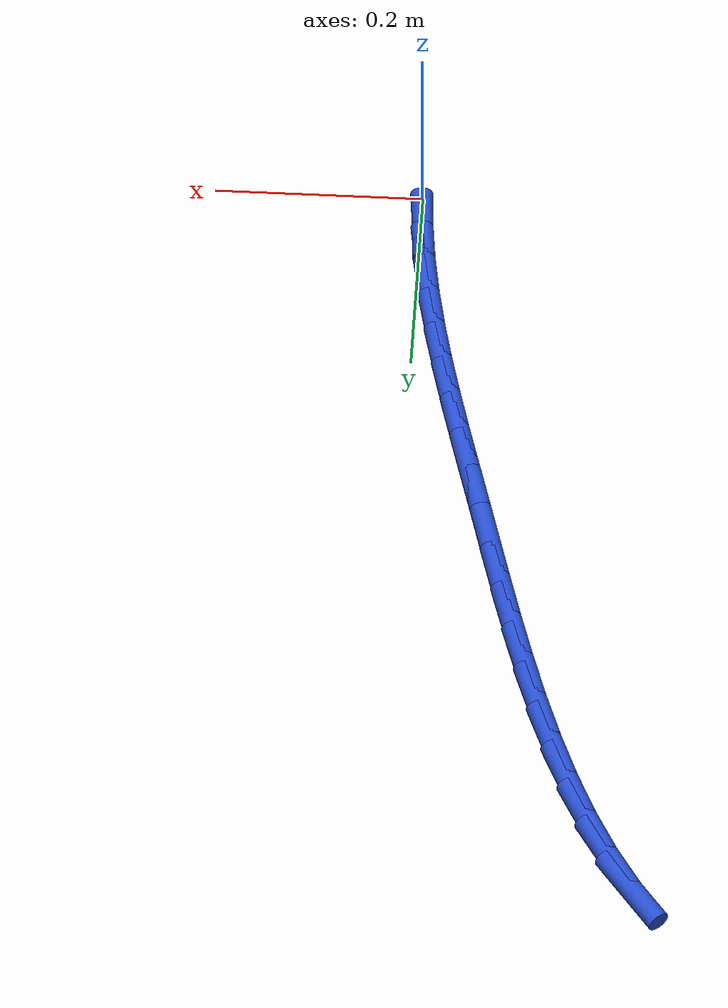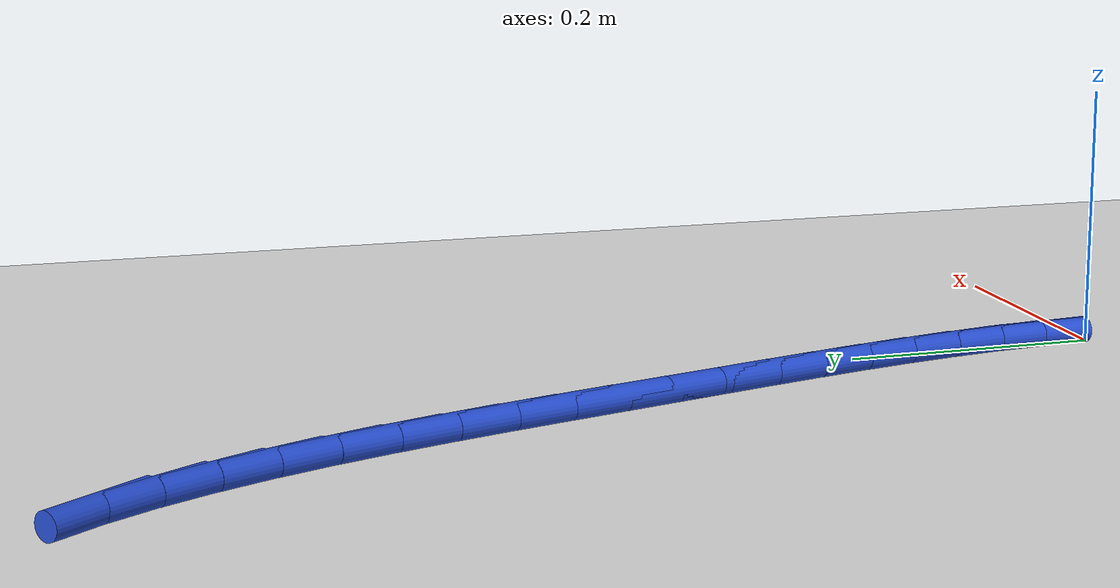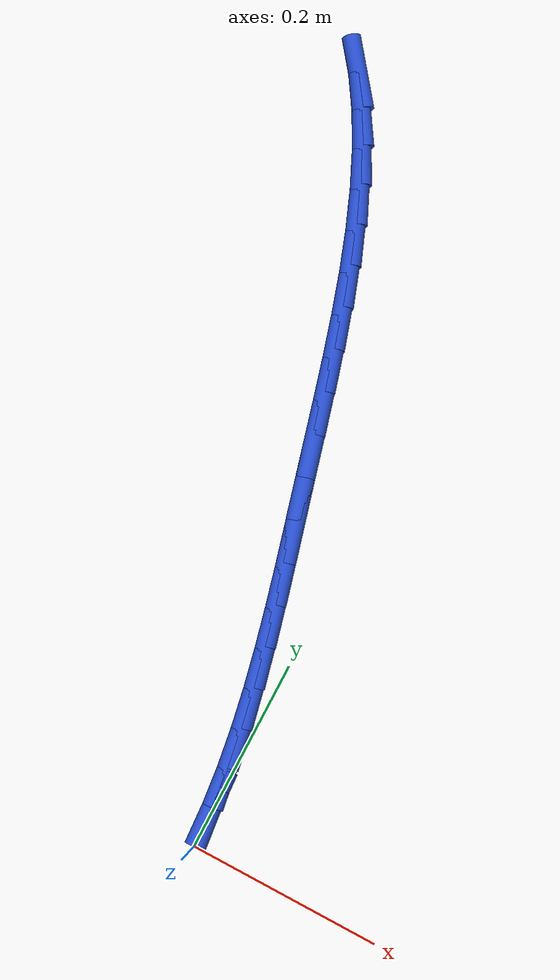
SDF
<sdf version="1.6">
 <world name="default">
  <model name="ground_plane">
   <static>1</static>
   <link name="link">
    <collision name="collision">
     <geometry><plane><normal>0 0 1</normal><size>100 100</size></plane></geometry>
     <surface><friction><ode><mu>100</mu><mu2>50</mu2></ode></friction></surface>
    </collision>
    <visual name="visual">
     <cast_shadows>0</cast_shadows>
     <geometry><plane><normal>0 0 1</normal><size>100 100</size></plane></geometry>
     <material>
      <script><uri>file://media/materials/scripts/gazebo.material</uri><name>Gazebo/WhiteGlow</name></script>
     </material>
    </visual>
   </link>
  </model>
  <model name="line">
   <link name="link_1">
    <pose>-0.0023930297820890945 0.04099016066702728 0.01 0 1.57 -1.4640141417196577</pose>
    <collision name="collision">
     <geometry><cylinder><radius>0.01</radius><length>0.08</length></cylinder></geometry>
    </collision>
    <visual name="visual">
     <material>
      <script><name>Gazebo/Blue</name><uri>file://media/materials/scripts/gazebo.material</uri></script>
     </material>
     <geometry><cylinder><radius>0.01</radius><length>0.08</length></cylinder></geometry>
    </visual>
   </link>
   <link name="link_2">
    <pose>-0.0067553265607276205 0.0816870605255259 0.01 0 1.57 -1.4215754872500803</pose>
    <collision name="collision">
     <geometry><cylinder><radius>0.01</radius><length>0.08</length></cylinder></geometry>
    </collision>
    <visual name="visual">
     <material>
      <script><name>Gazebo/Blue</name><uri>file://media/materials/scripts/gazebo.material</uri></script>
     </material>
     <geometry><cylinder><radius>0.01</radius><length>0.08</length></cylinder></geometry>
    </visual>
   </link>
   <link name="link_3">
    <pose>-0.012848597226478048 0.12221744090637951 0.01 0 1.57 -1.3855924008493954</pose>
    <collision name="collision">
     <geometry><cylinder><radius>0.01</radius><length>0.08</length></cylinder></geometry>
    </collision>
    <visual name="visual">
     <material>
      <script><name>Gazebo/Blue</name><uri>file://media/materials/scripts/gazebo.material</uri></script>
     </material>
     <geometry><cylinder><radius>0.01</radius><length>0.08</length></cylinder></geometry>
    </visual>
   </link>
   <link name="link_4">
    <pose>-0.02043454866990284 0.16270804314047127 0.01 0 1.57 -1.356285536956008</pose>
    <collision name="collision">
     <geometry><cylinder><radius>0.01</radius><length>0.08</length></cylinder></geometry>
    </collision>
    <visual name="visual">
     <material>
      <script><name>Gazebo/Blue</name><uri>file://media/materials/scripts/gazebo.material</uri></script>
     </material>
     <geometry><cylinder><radius>0.01</radius><length>0.08</length></cylinder></geometry>
    </visual>
   </link>
   <link name="link_5">
    <pose>-0.029274887781564455 0.20328560855868466 0.01 0 1.57 -1.3337097857130946</pose>
    <collision name="collision">
     <geometry><cylinder><radius>0.01</radius><length>0.08</length></cylinder></geometry>
    </collision>
    <visual name="visual">
     <material>
      <script><name>Gazebo/Blue</name><uri>file://media/materials/scripts/gazebo.material</uri></script>
     </material>
     <geometry><cylinder><radius>0.01</radius><length>0.08</length></cylinder></geometry>
    </visual>
   </link>
   <link name="link_6">
    <pose>-0.0391313214520254 0.24407687849190307 0.01 0 1.57 -1.3177953655166155</pose>
    <collision name="collision">
     <geometry><cylinder><radius>0.01</radius><length>0.08</length></cylinder></geometry>
    </collision>
    <visual name="visual">
     <material>
      <script><name>Gazebo/Blue</name><uri>file://media/materials/scripts/gazebo.material</uri></script>
     </material>
     <geometry><cylinder><radius>0.01</radius><length>0.08</length></cylinder></geometry>
    </visual>
   </link>
   <link name="link_7">
    <pose>-0.04976555657184812 0.28520859427100975 0.01 0 1.57 -1.3083835901399055</pose>
    <collision name="collision">
     <geometry><cylinder><radius>0.01</radius><length>0.08</length></cylinder></geometry>
    </collision>
    <visual name="visual">
     <material>
      <script><name>Gazebo/Blue</name><uri>file://media/materials/scripts/gazebo.material</uri></script>
     </material>
     <geometry><cylinder><radius>0.01</radius><length>0.08</length></cylinder></geometry>
    </visual>
   </link>
   <link name="link_8">
    <pose>-0.06093930003159509 0.32680749722688807 0.01 0 1.57 -1.305254239659153</pose>
    <collision name="collision">
     <geometry><cylinder><radius>0.01</radius><length>0.08</length></cylinder></geometry>
    </collision>
    <visual name="visual">
     <material>
      <script><name>Gazebo/Blue</name><uri>file://media/materials/scripts/gazebo.material</uri></script>
     </material>
     <geometry><cylinder><radius>0.01</radius><length>0.08</length></cylinder></geometry>
    </visual>
   </link>
   <link name="link_9">
    <pose>-0.0724142587218288 0.36900032869042143 0.01 0 1.57 -1.3074455239687846</pose>
    <collision name="collision">
     <geometry><cylinder><radius>0.01</radius><length>0.08</length></cylinder></geometry>
    </collision>
    <visual name="visual">
     <material>
      <script><name>Gazebo/Blue</name><uri>file://media/materials/scripts/gazebo.material</uri></script>
     </material>
     <geometry><cylinder><radius>0.01</radius><length>0.08</length></cylinder></geometry>
    </visual>
   </link>
   <link name="link_10">
    <pose>-0.08397723339862287 0.41188768243456314 0.01 0 1.57 -1.3070664677826795</pose>
    <collision name="collision">
     <geometry><cylinder><radius>0.01</radius><length>0.08</length></cylinder></geometry>
    </collision>
    <visual name="visual">
     <material>
      <script><name>Gazebo/Blue</name><uri>file://media/materials/scripts/gazebo.material</uri></script>
     </material>
     <geometry><cylinder><radius>0.01</radius><length>0.08</length></cylinder></geometry>
    </visual>
   </link>
   <link name="link_11">
    <pose>-0.09569388547635828 0.45527958220373976 0.01 0 1.57 -1.299430349507339</pose>
    <collision name="collision">
     <geometry><cylinder><radius>0.01</radius><length>0.08</length></cylinder></geometry>
    </collision>
    <visual name="visual">
     <material>
      <script><name>Gazebo/Blue</name><uri>file://media/materials/scripts/gazebo.material</uri></script>
     </material>
     <geometry><cylinder><radius>0.01</radius><length>0.08</length></cylinder></geometry>
    </visual>
   </link>
   <link name="link_12">
    <pose>-0.10780386450942175 0.49880475783339895 0.01 0 1.57 -1.2844283589881462</pose>
    <collision name="collision">
     <geometry><cylinder><radius>0.01</radius><length>0.08</length></cylinder></geometry>
    </collision>
    <visual name="visual">
     <material>
      <script><name>Gazebo/Blue</name><uri>file://media/materials/scripts/gazebo.material</uri></script>
     </material>
     <geometry><cylinder><radius>0.01</radius><length>0.08</length></cylinder></geometry>
    </visual>
   </link>
   <link name="link_13">
    <pose>-0.12054946503932609 0.5420891831087467 0.01 0 1.57 -1.2617476785269812</pose>
    <collision name="collision">
     <geometry><cylinder><radius>0.01</radius><length>0.08</length></cylinder></geometry>
    </collision>
    <visual name="visual">
     <material>
      <script><name>Gazebo/Blue</name><uri>file://media/materials/scripts/gazebo.material</uri></script>
     </material>
     <geometry><cylinder><radius>0.01</radius><length>0.08</length></cylinder></geometry>
    </visual>
   </link>
   <link name="link_14">
    <pose>-0.13417298160758426 0.5847588318149887 0.01 0 1.57 -1.2308032604516916</pose>
    <collision name="collision">
     <geometry><cylinder><radius>0.01</radius><length>0.08</length></cylinder></geometry>
    </collision>
    <visual name="visual">
     <material>
      <script><name>Gazebo/Blue</name><uri>file://media/materials/scripts/gazebo.material</uri></script>
     </material>
     <geometry><cylinder><radius>0.01</radius><length>0.08</length></cylinder></geometry>
    </visual>
   </link>
   <link name="link_15">
    <pose>-0.14891670875570912 0.6264396777373312 0.01 0 1.57 -1.1907385012193743</pose>
    <collision name="collision">
     <geometry><cylinder><radius>0.01</radius><length>0.08</length></cylinder></geometry>
    </collision>
    <visual name="visual">
     <material>
      <script><name>Gazebo/Blue</name><uri>file://media/materials/scripts/gazebo.material</uri></script>
     </material>
     <geometry><cylinder><radius>0.01</radius><length>0.08</length></cylinder></geometry>
    </visual>
   </link>
   <link name="link_16">
    <pose>-0.16502294102521364 0.6667576946609803 0.01 0 1.57 -1.1404344706703422</pose>
    <collision name="collision">
     <geometry><cylinder><radius>0.01</radius><length>0.08</length></cylinder></geometry>
    </collision>
    <visual name="visual">
     <material>
      <script><name>Gazebo/Blue</name><uri>file://media/materials/scripts/gazebo.material</uri></script>
     </material>
     <geometry><cylinder><radius>0.01</radius><length>0.08</length></cylinder></geometry>
    </visual>
   </link>
   <link name="link_17">
    <pose>-0.1827339729576107 0.705338856371142 0.01 0 1.57 -1.0785510076083233</pose>
    <collision name="collision">
     <geometry><cylinder><radius>0.01</radius><length>0.08</length></cylinder></geometry>
    </collision>
    <visual name="visual">
     <material>
      <script><name>Gazebo/Blue</name><uri>file://media/materials/scripts/gazebo.material</uri></script>
     </material>
     <geometry><cylinder><radius>0.01</radius><length>0.08</length></cylinder></geometry>
    </visual>
   </link>
   <link name="link_18">
    <pose>-0.2022920990944132 0.7418091366530223 0.01 0 1.57 -1.003638735944168</pose>
    <collision name="collision">
     <geometry><cylinder><radius>0.01</radius><length>0.08</length></cylinder></geometry>
    </collision>
    <visual name="visual">
     <material>
      <script><name>Gazebo/Blue</name><uri>file://media/materials/scripts/gazebo.material</uri></script>
     </material>
     <geometry><cylinder><radius>0.01</radius><length>0.08</length></cylinder></geometry>
    </visual>
   </link>
   <link name="link_19">
    <pose>-0.22393961397713405 0.7757945092918269 0.01 0 1.57 -0.91437884679505</pose>
    <collision name="collision">
     <geometry><cylinder><radius>0.01</radius><length>0.08</length></cylinder></geometry>
    </collision>
    <visual name="visual">
     <material>
      <script><name>Gazebo/Blue</name><uri>file://media/materials/scripts/gazebo.material</uri></script>
     </material>
     <geometry><cylinder><radius>0.01</radius><length>0.08</length></cylinder></geometry>
    </visual>
   </link>
   <link name="link_161">
    <pose>-0.002441866909832384 0.0409451000456694 0.01 0 1.57 -1.5112292938472587</pose>
    <collision name="collision">
     <geometry><cylinder><radius>0.01</radius><length>0.08</length></cylinder></geometry>
    </collision>
    <visual name="visual">
     <material>
      <script><name>Gazebo/Blue</name><uri>file://media/materials/scripts/gazebo.material</uri></script>
     </material>
     <geometry><cylinder><radius>0.01</radius><length>0.08</length></cylinder></geometry>
    </visual>
   </link>
  </model>
 </world>
</sdf>
